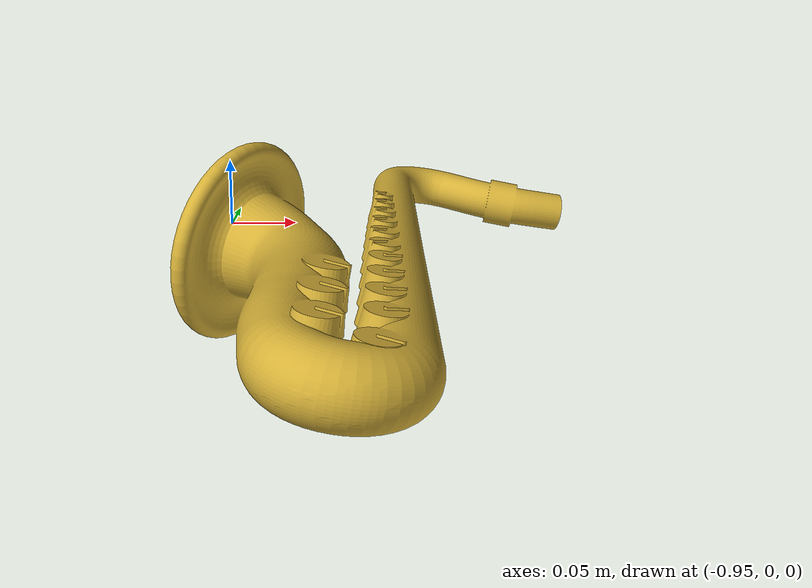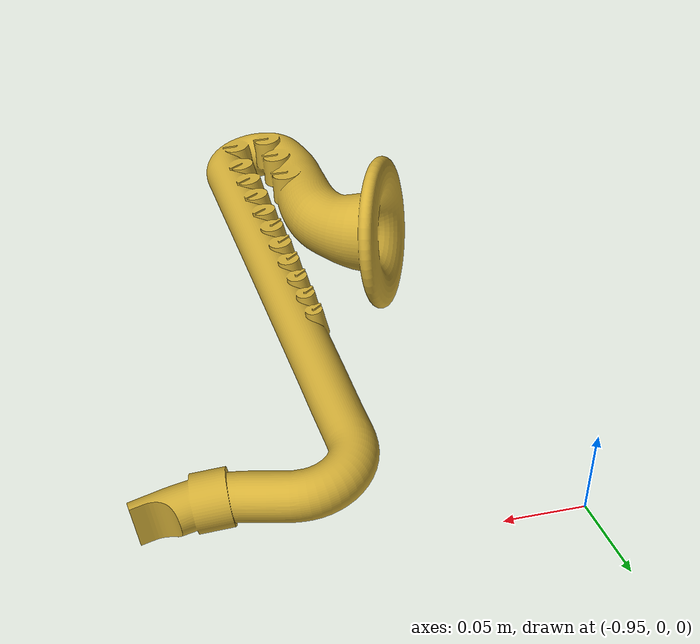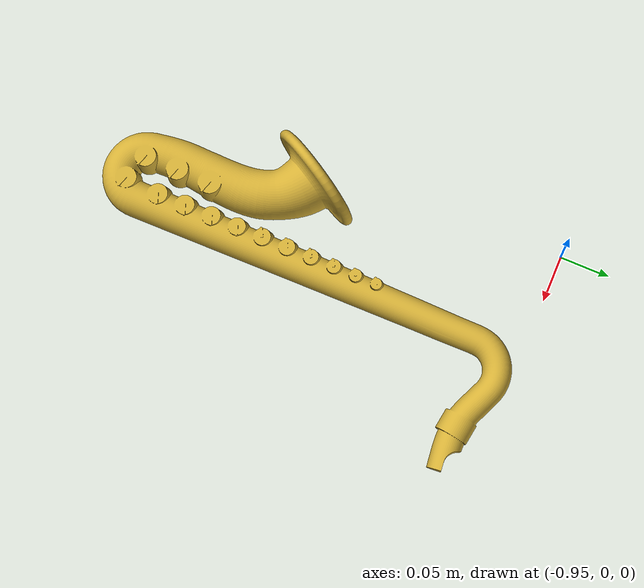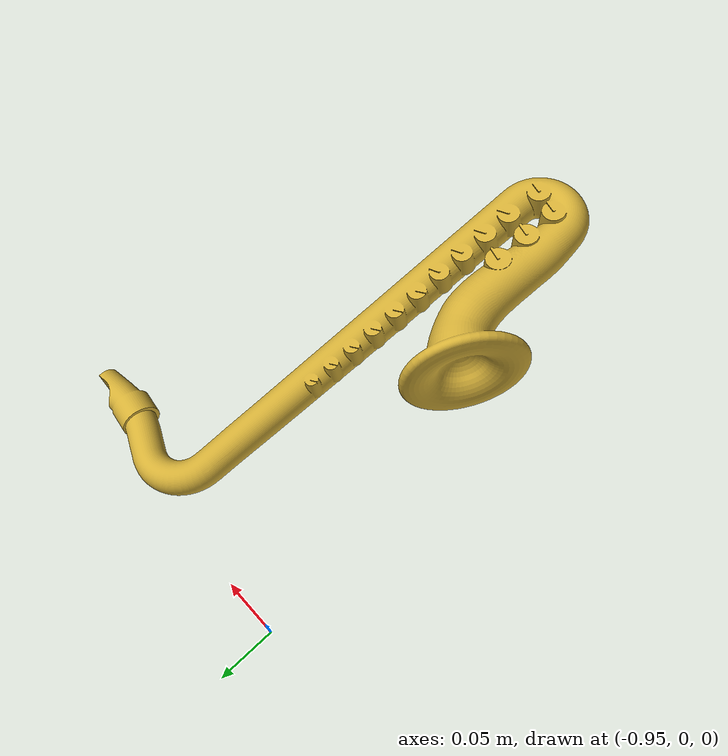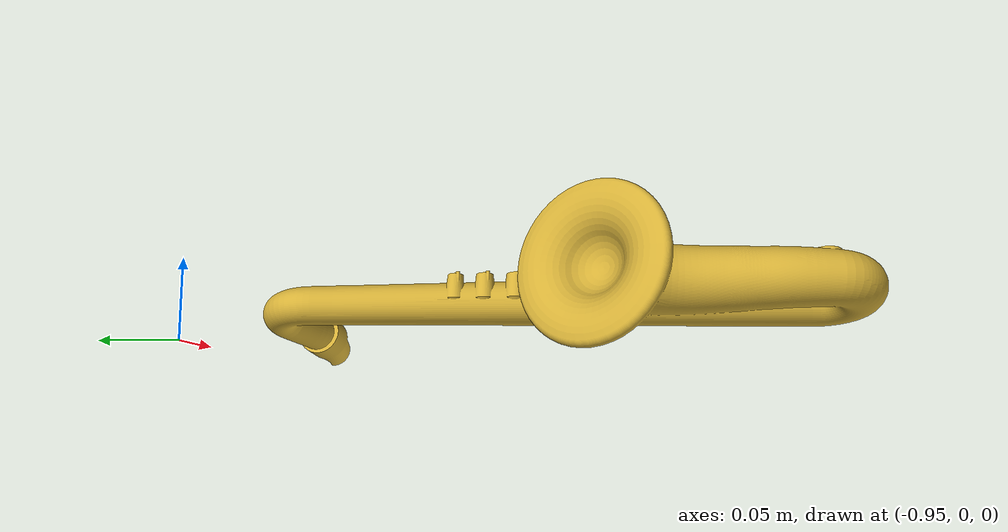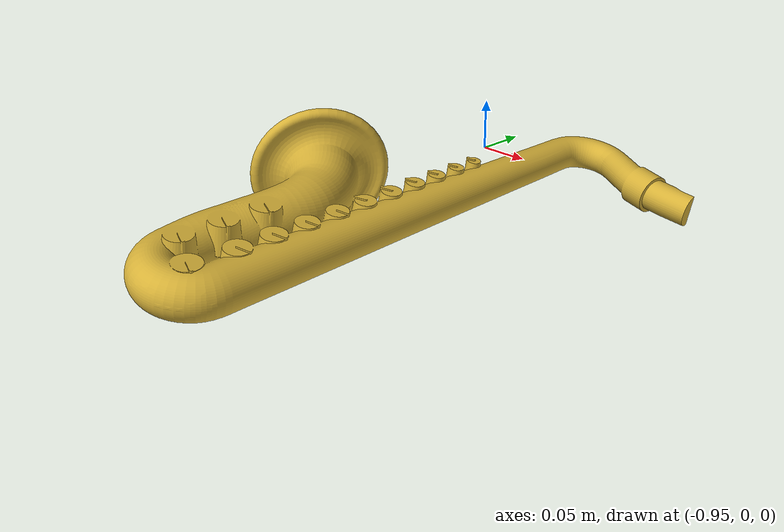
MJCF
<mujoco model="mesh_model">
    <asset>
        <mesh name="sax" file="sax.obj" scale = "0.025 0.025 0.025"/>
    </asset>
    <worldbody>
        <body pos="-0.95 0 0.0025"> <!-- Move to center of the plane -->
            <!-- Apply scaling and 90-degree rotation around the Z-axis -->
            <geom type="mesh" mesh="sax" contype="0" conaffinity="0"
                  euler="90 0 -10"
                  rgba="0.831 0.686 0.216 1"/>
        </body>
    </worldbody>
</mujoco>
